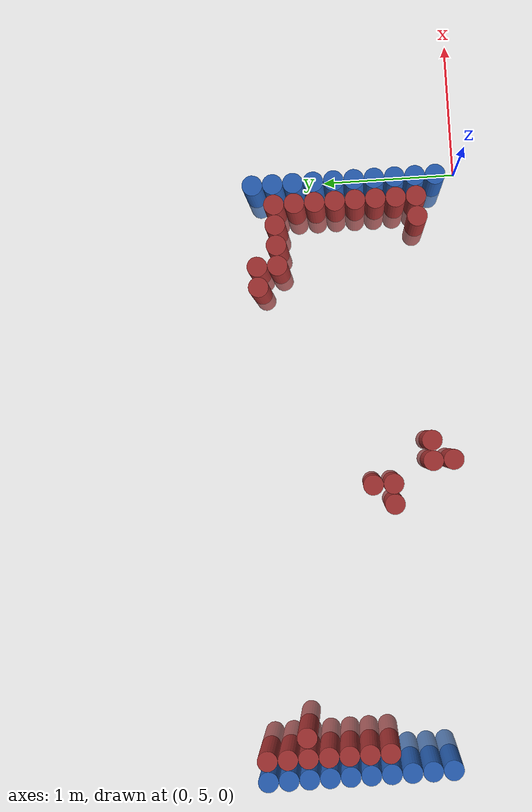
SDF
<sdf version="1.6">
 <world name="default">
  <model name="ground_plane">
   <static>1</static>
   <link name="link">
    <collision name="collision">
     <geometry><plane><normal>0 0 1</normal><size>100 100</size></plane></geometry>
     <surface><friction><ode><mu>100</mu><mu2>50</mu2></ode></friction></surface>
    </collision>
    <visual name="visual">
     <cast_shadows>0</cast_shadows>
     <geometry><plane><normal>0 0 1</normal><size>100 100</size></plane></geometry>
     <material>
      <script><uri>file://media/materials/scripts/gazebo.material</uri><name>Gazebo/Grey</name></script>
     </material>
    </visual>
   </link>
  </model>
  <model name="unit_cylinder_97">
   <static>1</static>
   <pose>-4.425000 5.325000 0.000000 0.000000 0.000000 0.000000</pose>
   <link name="link">
    <inertial>
     <mass>1</mass>
     <inertia><ixx>0.145833</ixx><ixy>0</ixy><ixz>0</ixz><iyy>0.145833</iyy><iyz>0</iyz><izz>0.125</izz></inertia>
    </inertial>
    <collision name="collision">
     <geometry><cylinder><radius>0.075000</radius><length>1</length></cylinder></geometry>
    </collision>
    <visual name="visual">
     <geometry><cylinder><radius>0.075000</radius><length>1</length></cylinder></geometry>
     <material>
      <ambient>0.152000 0.379000 0.720000 1</ambient>
      <diffuse>0.152000 0.379000 0.720000 1</diffuse>
     </material>
     <material>
      <script><name>Gazebo/Grey</name><uri>file://media/materials/scripts/gazebo.material</uri></script>
     </material>
    </visual>
   </link>
  </model>
  <model name="unit_cylinder_98">
   <static>1</static>
   <pose>-4.425000 5.475000 0.000000 0.000000 0.000000 0.000000</pose>
   <link name="link">
    <inertial>
     <mass>1</mass>
     <inertia><ixx>0.145833</ixx><ixy>0</ixy><ixz>0</ixz><iyy>0.145833</iyy><iyz>0</iyz><izz>0.125</izz></inertia>
    </inertial>
    <collision name="collision">
     <geometry><cylinder><radius>0.075000</radius><length>1</length></cylinder></geometry>
    </collision>
    <visual name="visual">
     <geometry><cylinder><radius>0.075000</radius><length>1</length></cylinder></geometry>
     <material>
      <ambient>0.152000 0.379000 0.720000 1</ambient>
      <diffuse>0.152000 0.379000 0.720000 1</diffuse>
     </material>
     <material>
      <script><name>Gazebo/Grey</name><uri>file://media/materials/scripts/gazebo.material</uri></script>
     </material>
    </visual>
   </link>
  </model>
  <model name="unit_cylinder_99">
   <static>1</static>
   <pose>-4.425000 5.625000 0.000000 0.000000 0.000000 0.000000</pose>
   <link name="link">
    <inertial>
     <mass>1</mass>
     <inertia><ixx>0.145833</ixx><ixy>0</ixy><ixz>0</ixz><iyy>0.145833</iyy><iyz>0</iyz><izz>0.125</izz></inertia>
    </inertial>
    <collision name="collision">
     <geometry><cylinder><radius>0.075000</radius><length>1</length></cylinder></geometry>
    </collision>
    <visual name="visual">
     <geometry><cylinder><radius>0.075000</radius><length>1</length></cylinder></geometry>
     <material>
      <ambient>0.152000 0.379000 0.720000 1</ambient>
      <diffuse>0.152000 0.379000 0.720000 1</diffuse>
     </material>
     <material>
      <script><name>Gazebo/Grey</name><uri>file://media/materials/scripts/gazebo.material</uri></script>
     </material>
    </visual>
   </link>
  </model>
  <model name="unit_cylinder_100">
   <static>1</static>
   <pose>-4.425000 5.775000 0.000000 0.000000 0.000000 0.000000</pose>
   <link name="link">
    <inertial>
     <mass>1</mass>
     <inertia><ixx>0.145833</ixx><ixy>0</ixy><ixz>0</ixz><iyy>0.145833</iyy><iyz>0</iyz><izz>0.125</izz></inertia>
    </inertial>
    <collision name="collision">
     <geometry><cylinder><radius>0.075000</radius><length>1</length></cylinder></geometry>
    </collision>
    <visual name="visual">
     <geometry><cylinder><radius>0.075000</radius><length>1</length></cylinder></geometry>
     <material>
      <ambient>0.152000 0.379000 0.720000 1</ambient>
      <diffuse>0.152000 0.379000 0.720000 1</diffuse>
     </material>
     <material>
      <script><name>Gazebo/Grey</name><uri>file://media/materials/scripts/gazebo.material</uri></script>
     </material>
    </visual>
   </link>
  </model>
  <model name="unit_cylinder_101">
   <static>1</static>
   <pose>-4.425000 5.925000 0.000000 0.000000 0.000000 0.000000</pose>
   <link name="link">
    <inertial>
     <mass>1</mass>
     <inertia><ixx>0.145833</ixx><ixy>0</ixy><ixz>0</ixz><iyy>0.145833</iyy><iyz>0</iyz><izz>0.125</izz></inertia>
    </inertial>
    <collision name="collision">
     <geometry><cylinder><radius>0.075000</radius><length>1</length></cylinder></geometry>
    </collision>
    <visual name="visual">
     <geometry><cylinder><radius>0.075000</radius><length>1</length></cylinder></geometry>
     <material>
      <ambient>0.152000 0.379000 0.720000 1</ambient>
      <diffuse>0.152000 0.379000 0.720000 1</diffuse>
     </material>
     <material>
      <script><name>Gazebo/Grey</name><uri>file://media/materials/scripts/gazebo.material</uri></script>
     </material>
    </visual>
   </link>
  </model>
  <model name="unit_cylinder_102">
   <static>1</static>
   <pose>-4.425000 6.075000 0.000000 0.000000 0.000000 0.000000</pose>
   <link name="link">
    <inertial>
     <mass>1</mass>
     <inertia><ixx>0.145833</ixx><ixy>0</ixy><ixz>0</ixz><iyy>0.145833</iyy><iyz>0</iyz><izz>0.125</izz></inertia>
    </inertial>
    <collision name="collision">
     <geometry><cylinder><radius>0.075000</radius><length>1</length></cylinder></geometry>
    </collision>
    <visual name="visual">
     <geometry><cylinder><radius>0.075000</radius><length>1</length></cylinder></geometry>
     <material>
      <ambient>0.152000 0.379000 0.720000 1</ambient>
      <diffuse>0.152000 0.379000 0.720000 1</diffuse>
     </material>
     <material>
      <script><name>Gazebo/Grey</name><uri>file://media/materials/scripts/gazebo.material</uri></script>
     </material>
    </visual>
   </link>
  </model>
  <model name="unit_cylinder_103">
   <static>1</static>
   <pose>-4.425000 6.225000 0.000000 0.000000 0.000000 0.000000</pose>
   <link name="link">
    <inertial>
     <mass>1</mass>
     <inertia><ixx>0.145833</ixx><ixy>0</ixy><ixz>0</ixz><iyy>0.145833</iyy><iyz>0</iyz><izz>0.125</izz></inertia>
    </inertial>
    <collision name="collision">
     <geometry><cylinder><radius>0.075000</radius><length>1</length></cylinder></geometry>
    </collision>
    <visual name="visual">
     <geometry><cylinder><radius>0.075000</radius><length>1</length></cylinder></geometry>
     <material>
      <ambient>0.152000 0.379000 0.720000 1</ambient>
      <diffuse>0.152000 0.379000 0.720000 1</diffuse>
     </material>
     <material>
      <script><name>Gazebo/Grey</name><uri>file://media/materials/scripts/gazebo.material</uri></script>
     </material>
    </visual>
   </link>
  </model>
  <model name="unit_cylinder_104">
   <static>1</static>
   <pose>-4.425000 6.375000 0.000000 0.000000 0.000000 0.000000</pose>
   <link name="link">
    <inertial>
     <mass>1</mass>
     <inertia><ixx>0.145833</ixx><ixy>0</ixy><ixz>0</ixz><iyy>0.145833</iyy><iyz>0</iyz><izz>0.125</izz></inertia>
    </inertial>
    <collision name="collision">
     <geometry><cylinder><radius>0.075000</radius><length>1</length></cylinder></geometry>
    </collision>
    <visual name="visual">
     <geometry><cylinder><radius>0.075000</radius><length>1</length></cylinder></geometry>
     <material>
      <ambient>0.152000 0.379000 0.720000 1</ambient>
      <diffuse>0.152000 0.379000 0.720000 1</diffuse>
     </material>
     <material>
      <script><name>Gazebo/Grey</name><uri>file://media/materials/scripts/gazebo.material</uri></script>
     </material>
    </visual>
   </link>
  </model>
  <model name="unit_cylinder_105">
   <static>1</static>
   <pose>-4.425000 6.525000 0.000000 0.000000 0.000000 0.000000</pose>
   <link name="link">
    <inertial>
     <mass>1</mass>
     <inertia><ixx>0.145833</ixx><ixy>0</ixy><ixz>0</ixz><iyy>0.145833</iyy><iyz>0</iyz><izz>0.125</izz></inertia>
    </inertial>
    <collision name="collision">
     <geometry><cylinder><radius>0.075000</radius><length>1</length></cylinder></geometry>
    </collision>
    <visual name="visual">
     <geometry><cylinder><radius>0.075000</radius><length>1</length></cylinder></geometry>
     <material>
      <ambient>0.152000 0.379000 0.720000 1</ambient>
      <diffuse>0.152000 0.379000 0.720000 1</diffuse>
     </material>
     <material>
      <script><name>Gazebo/Grey</name><uri>file://media/materials/scripts/gazebo.material</uri></script>
     </material>
    </visual>
   </link>
  </model>
  <model name="unit_cylinder_106">
   <static>1</static>
   <pose>-4.425000 6.675000 0.000000 0.000000 0.000000 0.000000</pose>
   <link name="link">
    <inertial>
     <mass>1</mass>
     <inertia><ixx>0.145833</ixx><ixy>0</ixy><ixz>0</ixz><iyy>0.145833</iyy><iyz>0</iyz><izz>0.125</izz></inertia>
    </inertial>
    <collision name="collision">
     <geometry><cylinder><radius>0.075000</radius><length>1</length></cylinder></geometry>
    </collision>
    <visual name="visual">
     <geometry><cylinder><radius>0.075000</radius><length>1</length></cylinder></geometry>
     <material>
      <ambient>0.152000 0.379000 0.720000 1</ambient>
      <diffuse>0.152000 0.379000 0.720000 1</diffuse>
     </material>
     <material>
      <script><name>Gazebo/Grey</name><uri>file://media/materials/scripts/gazebo.material</uri></script>
     </material>
    </visual>
   </link>
  </model>
  <model name="unit_cylinder_126">
   <static>1</static>
   <pose>-4.275000 5.775000 0.000000 0.000000 0.000000 0.000000</pose>
   <link name="link">
    <inertial>
     <mass>1</mass>
     <inertia><ixx>0.145833</ixx><ixy>0</ixy><ixz>0</ixz><iyy>0.145833</iyy><iyz>0</iyz><izz>0.125</izz></inertia>
    </inertial>
    <collision name="collision">
     <geometry><cylinder><radius>0.075000</radius><length>1</length></cylinder></geometry>
    </collision>
    <visual name="visual">
     <geometry><cylinder><radius>0.075000</radius><length>1</length></cylinder></geometry>
     <material>
      <ambient>0.648000 0.192000 0.192000 1</ambient>
      <diffuse>0.648000 0.192000 0.192000 1</diffuse>
     </material>
     <material>
      <script><name>Gazebo/Grey</name><uri>file://media/materials/scripts/gazebo.material</uri></script>
     </material>
    </visual>
   </link>
  </model>
  <model name="unit_cylinder_127">
   <static>1</static>
   <pose>-4.275000 5.925000 0.000000 0.000000 0.000000 0.000000</pose>
   <link name="link">
    <inertial>
     <mass>1</mass>
     <inertia><ixx>0.145833</ixx><ixy>0</ixy><ixz>0</ixz><iyy>0.145833</iyy><iyz>0</iyz><izz>0.125</izz></inertia>
    </inertial>
    <collision name="collision">
     <geometry><cylinder><radius>0.075000</radius><length>1</length></cylinder></geometry>
    </collision>
    <visual name="visual">
     <geometry><cylinder><radius>0.075000</radius><length>1</length></cylinder></geometry>
     <material>
      <ambient>0.648000 0.192000 0.192000 1</ambient>
      <diffuse>0.648000 0.192000 0.192000 1</diffuse>
     </material>
     <material>
      <script><name>Gazebo/Grey</name><uri>file://media/materials/scripts/gazebo.material</uri></script>
     </material>
    </visual>
   </link>
  </model>
  <model name="unit_cylinder_128">
   <static>1</static>
   <pose>-4.275000 6.075000 0.000000 0.000000 0.000000 0.000000</pose>
   <link name="link">
    <inertial>
     <mass>1</mass>
     <inertia><ixx>0.145833</ixx><ixy>0</ixy><ixz>0</ixz><iyy>0.145833</iyy><iyz>0</iyz><izz>0.125</izz></inertia>
    </inertial>
    <collision name="collision">
     <geometry><cylinder><radius>0.075000</radius><length>1</length></cylinder></geometry>
    </collision>
    <visual name="visual">
     <geometry><cylinder><radius>0.075000</radius><length>1</length></cylinder></geometry>
     <material>
      <ambient>0.648000 0.192000 0.192000 1</ambient>
      <diffuse>0.648000 0.192000 0.192000 1</diffuse>
     </material>
     <material>
      <script><name>Gazebo/Grey</name><uri>file://media/materials/scripts/gazebo.material</uri></script>
     </material>
    </visual>
   </link>
  </model>
  <model name="unit_cylinder_129">
   <static>1</static>
   <pose>-4.275000 6.225000 0.000000 0.000000 0.000000 0.000000</pose>
   <link name="link">
    <inertial>
     <mass>1</mass>
     <inertia><ixx>0.145833</ixx><ixy>0</ixy><ixz>0</ixz><iyy>0.145833</iyy><iyz>0</iyz><izz>0.125</izz></inertia>
    </inertial>
    <collision name="collision">
     <geometry><cylinder><radius>0.075000</radius><length>1</length></cylinder></geometry>
    </collision>
    <visual name="visual">
     <geometry><cylinder><radius>0.075000</radius><length>1</length></cylinder></geometry>
     <material>
      <ambient>0.648000 0.192000 0.192000 1</ambient>
      <diffuse>0.648000 0.192000 0.192000 1</diffuse>
     </material>
     <material>
      <script><name>Gazebo/Grey</name><uri>file://media/materials/scripts/gazebo.material</uri></script>
     </material>
    </visual>
   </link>
  </model>
  <model name="unit_cylinder_130">
   <static>1</static>
   <pose>-4.275000 6.375000 0.000000 0.000000 0.000000 0.000000</pose>
   <link name="link">
    <inertial>
     <mass>1</mass>
     <inertia><ixx>0.145833</ixx><ixy>0</ixy><ixz>0</ixz><iyy>0.145833</iyy><iyz>0</iyz><izz>0.125</izz></inertia>
    </inertial>
    <collision name="collision">
     <geometry><cylinder><radius>0.075000</radius><length>1</length></cylinder></geometry>
    </collision>
    <visual name="visual">
     <geometry><cylinder><radius>0.075000</radius><length>1</length></cylinder></geometry>
     <material>
      <ambient>0.648000 0.192000 0.192000 1</ambient>
      <diffuse>0.648000 0.192000 0.192000 1</diffuse>
     </material>
     <material>
      <script><name>Gazebo/Grey</name><uri>file://media/materials/scripts/gazebo.material</uri></script>
     </material>
    </visual>
   </link>
  </model>
  <model name="unit_cylinder_131">
   <static>1</static>
   <pose>-4.275000 6.525000 0.000000 0.000000 0.000000 0.000000</pose>
   <link name="link">
    <inertial>
     <mass>1</mass>
     <inertia><ixx>0.145833</ixx><ixy>0</ixy><ixz>0</ixz><iyy>0.145833</iyy><iyz>0</iyz><izz>0.125</izz></inertia>
    </inertial>
    <collision name="collision">
     <geometry><cylinder><radius>0.075000</radius><length>1</length></cylinder></geometry>
    </collision>
    <visual name="visual">
     <geometry><cylinder><radius>0.075000</radius><length>1</length></cylinder></geometry>
     <material>
      <ambient>0.648000 0.192000 0.192000 1</ambient>
      <diffuse>0.648000 0.192000 0.192000 1</diffuse>
     </material>
     <material>
      <script><name>Gazebo/Grey</name><uri>file://media/materials/scripts/gazebo.material</uri></script>
     </material>
    </visual>
   </link>
  </model>
  <model name="unit_cylinder_132">
   <static>1</static>
   <pose>-4.275000 6.675000 0.000000 0.000000 0.000000 0.000000</pose>
   <link name="link">
    <inertial>
     <mass>1</mass>
     <inertia><ixx>0.145833</ixx><ixy>0</ixy><ixz>0</ixz><iyy>0.145833</iyy><iyz>0</iyz><izz>0.125</izz></inertia>
    </inertial>
    <collision name="collision">
     <geometry><cylinder><radius>0.075000</radius><length>1</length></cylinder></geometry>
    </collision>
    <visual name="visual">
     <geometry><cylinder><radius>0.075000</radius><length>1</length></cylinder></geometry>
     <material>
      <ambient>0.648000 0.192000 0.192000 1</ambient>
      <diffuse>0.648000 0.192000 0.192000 1</diffuse>
     </material>
     <material>
      <script><name>Gazebo/Grey</name><uri>file://media/materials/scripts/gazebo.material</uri></script>
     </material>
    </visual>
   </link>
  </model>
  <model name="unit_cylinder_145">
   <static>1</static>
   <pose>-4.125000 6.375000 0.000000 0.000000 0.000000 0.000000</pose>
   <link name="link">
    <inertial>
     <mass>1</mass>
     <inertia><ixx>0.145833</ixx><ixy>0</ixy><ixz>0</ixz><iyy>0.145833</iyy><iyz>0</iyz><izz>0.125</izz></inertia>
    </inertial>
    <collision name="collision">
     <geometry><cylinder><radius>0.075000</radius><length>1</length></cylinder></geometry>
    </collision>
    <visual name="visual">
     <geometry><cylinder><radius>0.075000</radius><length>1</length></cylinder></geometry>
     <material>
      <ambient>0.648000 0.192000 0.192000 1</ambient>
      <diffuse>0.648000 0.192000 0.192000 1</diffuse>
     </material>
     <material>
      <script><name>Gazebo/Grey</name><uri>file://media/materials/scripts/gazebo.material</uri></script>
     </material>
    </visual>
   </link>
  </model>
  <model name="unit_cylinder_163">
   <static>1</static>
   <pose>-2.475000 5.625000 0.000000 0.000000 0.000000 0.000000</pose>
   <link name="link">
    <inertial>
     <mass>1</mass>
     <inertia><ixx>0.145833</ixx><ixy>0</ixy><ixz>0</ixz><iyy>0.145833</iyy><iyz>0</iyz><izz>0.125</izz></inertia>
    </inertial>
    <collision name="collision">
     <geometry><cylinder><radius>0.075000</radius><length>1</length></cylinder></geometry>
    </collision>
    <visual name="visual">
     <geometry><cylinder><radius>0.075000</radius><length>1</length></cylinder></geometry>
     <material>
      <ambient>0.648000 0.192000 0.192000 1</ambient>
      <diffuse>0.648000 0.192000 0.192000 1</diffuse>
     </material>
     <material>
      <script><name>Gazebo/Grey</name><uri>file://media/materials/scripts/gazebo.material</uri></script>
     </material>
    </visual>
   </link>
  </model>
  <model name="unit_cylinder_167">
   <static>1</static>
   <pose>-2.325000 5.625000 0.000000 0.000000 0.000000 0.000000</pose>
   <link name="link">
    <inertial>
     <mass>1</mass>
     <inertia><ixx>0.145833</ixx><ixy>0</ixy><ixz>0</ixz><iyy>0.145833</iyy><iyz>0</iyz><izz>0.125</izz></inertia>
    </inertial>
    <collision name="collision">
     <geometry><cylinder><radius>0.075000</radius><length>1</length></cylinder></geometry>
    </collision>
    <visual name="visual">
     <geometry><cylinder><radius>0.075000</radius><length>1</length></cylinder></geometry>
     <material>
      <ambient>0.648000 0.192000 0.192000 1</ambient>
      <diffuse>0.648000 0.192000 0.192000 1</diffuse>
     </material>
     <material>
      <script><name>Gazebo/Grey</name><uri>file://media/materials/scripts/gazebo.material</uri></script>
     </material>
    </visual>
   </link>
  </model>
  <model name="unit_cylinder_168">
   <static>1</static>
   <pose>-2.325000 5.775000 0.000000 0.000000 0.000000 0.000000</pose>
   <link name="link">
    <inertial>
     <mass>1</mass>
     <inertia><ixx>0.145833</ixx><ixy>0</ixy><ixz>0</ixz><iyy>0.145833</iyy><iyz>0</iyz><izz>0.125</izz></inertia>
    </inertial>
    <collision name="collision">
     <geometry><cylinder><radius>0.075000</radius><length>1</length></cylinder></geometry>
    </collision>
    <visual name="visual">
     <geometry><cylinder><radius>0.075000</radius><length>1</length></cylinder></geometry>
     <material>
      <ambient>0.648000 0.192000 0.192000 1</ambient>
      <diffuse>0.648000 0.192000 0.192000 1</diffuse>
     </material>
     <material>
      <script><name>Gazebo/Grey</name><uri>file://media/materials/scripts/gazebo.material</uri></script>
     </material>
    </visual>
   </link>
  </model>
  <model name="unit_cylinder_174">
   <static>1</static>
   <pose>-2.175000 5.175000 0.000000 0.000000 0.000000 0.000000</pose>
   <link name="link">
    <inertial>
     <mass>1</mass>
     <inertia><ixx>0.145833</ixx><ixy>0</ixy><ixz>0</ixz><iyy>0.145833</iyy><iyz>0</iyz><izz>0.125</izz></inertia>
    </inertial>
    <collision name="collision">
     <geometry><cylinder><radius>0.075000</radius><length>1</length></cylinder></geometry>
    </collision>
    <visual name="visual">
     <geometry><cylinder><radius>0.075000</radius><length>1</length></cylinder></geometry>
     <material>
      <ambient>0.648000 0.192000 0.192000 1</ambient>
      <diffuse>0.648000 0.192000 0.192000 1</diffuse>
     </material>
     <material>
      <script><name>Gazebo/Grey</name><uri>file://media/materials/scripts/gazebo.material</uri></script>
     </material>
    </visual>
   </link>
  </model>
  <model name="unit_cylinder_175">
   <static>1</static>
   <pose>-2.175000 5.325000 0.000000 0.000000 0.000000 0.000000</pose>
   <link name="link">
    <inertial>
     <mass>1</mass>
     <inertia><ixx>0.145833</ixx><ixy>0</ixy><ixz>0</ixz><iyy>0.145833</iyy><iyz>0</iyz><izz>0.125</izz></inertia>
    </inertial>
    <collision name="collision">
     <geometry><cylinder><radius>0.075000</radius><length>1</length></cylinder></geometry>
    </collision>
    <visual name="visual">
     <geometry><cylinder><radius>0.075000</radius><length>1</length></cylinder></geometry>
     <material>
      <ambient>0.648000 0.192000 0.192000 1</ambient>
      <diffuse>0.648000 0.192000 0.192000 1</diffuse>
     </material>
     <material>
      <script><name>Gazebo/Grey</name><uri>file://media/materials/scripts/gazebo.material</uri></script>
     </material>
    </visual>
   </link>
  </model>
  <model name="unit_cylinder_184">
   <static>1</static>
   <pose>-2.025000 5.325000 0.000000 0.000000 0.000000 0.000000</pose>
   <link name="link">
    <inertial>
     <mass>1</mass>
     <inertia><ixx>0.145833</ixx><ixy>0</ixy><ixz>0</ixz><iyy>0.145833</iyy><iyz>0</iyz><izz>0.125</izz></inertia>
    </inertial>
    <collision name="collision">
     <geometry><cylinder><radius>0.075000</radius><length>1</length></cylinder></geometry>
    </collision>
    <visual name="visual">
     <geometry><cylinder><radius>0.075000</radius><length>1</length></cylinder></geometry>
     <material>
      <ambient>0.648000 0.192000 0.192000 1</ambient>
      <diffuse>0.648000 0.192000 0.192000 1</diffuse>
     </material>
     <material>
      <script><name>Gazebo/Grey</name><uri>file://media/materials/scripts/gazebo.material</uri></script>
     </material>
    </visual>
   </link>
  </model>
  <model name="unit_cylinder_211">
   <static>1</static>
   <pose>-0.825000 6.525000 0.000000 0.000000 0.000000 0.000000</pose>
   <link name="link">
    <inertial>
     <mass>1</mass>
     <inertia><ixx>0.145833</ixx><ixy>0</ixy><ixz>0</ixz><iyy>0.145833</iyy><iyz>0</iyz><izz>0.125</izz></inertia>
    </inertial>
    <collision name="collision">
     <geometry><cylinder><radius>0.075000</radius><length>1</length></cylinder></geometry>
    </collision>
    <visual name="visual">
     <geometry><cylinder><radius>0.075000</radius><length>1</length></cylinder></geometry>
     <material>
      <ambient>0.648000 0.192000 0.192000 1</ambient>
      <diffuse>0.648000 0.192000 0.192000 1</diffuse>
     </material>
     <material>
      <script><name>Gazebo/Grey</name><uri>file://media/materials/scripts/gazebo.material</uri></script>
     </material>
    </visual>
   </link>
  </model>
  <model name="unit_cylinder_214">
   <static>1</static>
   <pose>-0.675000 6.375000 0.000000 0.000000 0.000000 0.000000</pose>
   <link name="link">
    <inertial>
     <mass>1</mass>
     <inertia><ixx>0.145833</ixx><ixy>0</ixy><ixz>0</ixz><iyy>0.145833</iyy><iyz>0</iyz><izz>0.125</izz></inertia>
    </inertial>
    <collision name="collision">
     <geometry><cylinder><radius>0.075000</radius><length>1</length></cylinder></geometry>
    </collision>
    <visual name="visual">
     <geometry><cylinder><radius>0.075000</radius><length>1</length></cylinder></geometry>
     <material>
      <ambient>0.648000 0.192000 0.192000 1</ambient>
      <diffuse>0.648000 0.192000 0.192000 1</diffuse>
     </material>
     <material>
      <script><name>Gazebo/Grey</name><uri>file://media/materials/scripts/gazebo.material</uri></script>
     </material>
    </visual>
   </link>
  </model>
  <model name="unit_cylinder_215">
   <static>1</static>
   <pose>-0.675000 6.525000 0.000000 0.000000 0.000000 0.000000</pose>
   <link name="link">
    <inertial>
     <mass>1</mass>
     <inertia><ixx>0.145833</ixx><ixy>0</ixy><ixz>0</ixz><iyy>0.145833</iyy><iyz>0</iyz><izz>0.125</izz></inertia>
    </inertial>
    <collision name="collision">
     <geometry><cylinder><radius>0.075000</radius><length>1</length></cylinder></geometry>
    </collision>
    <visual name="visual">
     <geometry><cylinder><radius>0.075000</radius><length>1</length></cylinder></geometry>
     <material>
      <ambient>0.648000 0.192000 0.192000 1</ambient>
      <diffuse>0.648000 0.192000 0.192000 1</diffuse>
     </material>
     <material>
      <script><name>Gazebo/Grey</name><uri>file://media/materials/scripts/gazebo.material</uri></script>
     </material>
    </visual>
   </link>
  </model>
  <model name="unit_cylinder_224">
   <static>1</static>
   <pose>-0.525000 6.375000 0.000000 0.000000 0.000000 0.000000</pose>
   <link name="link">
    <inertial>
     <mass>1</mass>
     <inertia><ixx>0.145833</ixx><ixy>0</ixy><ixz>0</ixz><iyy>0.145833</iyy><iyz>0</iyz><izz>0.125</izz></inertia>
    </inertial>
    <collision name="collision">
     <geometry><cylinder><radius>0.075000</radius><length>1</length></cylinder></geometry>
    </collision>
    <visual name="visual">
     <geometry><cylinder><radius>0.075000</radius><length>1</length></cylinder></geometry>
     <material>
      <ambient>0.648000 0.192000 0.192000 1</ambient>
      <diffuse>0.648000 0.192000 0.192000 1</diffuse>
     </material>
     <material>
      <script><name>Gazebo/Grey</name><uri>file://media/materials/scripts/gazebo.material</uri></script>
     </material>
    </visual>
   </link>
  </model>
  <model name="unit_cylinder_234">
   <static>1</static>
   <pose>-0.375000 5.325000 0.000000 0.000000 0.000000 0.000000</pose>
   <link name="link">
    <inertial>
     <mass>1</mass>
     <inertia><ixx>0.145833</ixx><ixy>0</ixy><ixz>0</ixz><iyy>0.145833</iyy><iyz>0</iyz><izz>0.125</izz></inertia>
    </inertial>
    <collision name="collision">
     <geometry><cylinder><radius>0.075000</radius><length>1</length></cylinder></geometry>
    </collision>
    <visual name="visual">
     <geometry><cylinder><radius>0.075000</radius><length>1</length></cylinder></geometry>
     <material>
      <ambient>0.648000 0.192000 0.192000 1</ambient>
      <diffuse>0.648000 0.192000 0.192000 1</diffuse>
     </material>
     <material>
      <script><name>Gazebo/Grey</name><uri>file://media/materials/scripts/gazebo.material</uri></script>
     </material>
    </visual>
   </link>
  </model>
  <model name="unit_cylinder_235">
   <static>1</static>
   <pose>-0.375000 6.375000 0.000000 0.000000 0.000000 0.000000</pose>
   <link name="link">
    <inertial>
     <mass>1</mass>
     <inertia><ixx>0.145833</ixx><ixy>0</ixy><ixz>0</ixz><iyy>0.145833</iyy><iyz>0</iyz><izz>0.125</izz></inertia>
    </inertial>
    <collision name="collision">
     <geometry><cylinder><radius>0.075000</radius><length>1</length></cylinder></geometry>
    </collision>
    <visual name="visual">
     <geometry><cylinder><radius>0.075000</radius><length>1</length></cylinder></geometry>
     <material>
      <ambient>0.648000 0.192000 0.192000 1</ambient>
      <diffuse>0.648000 0.192000 0.192000 1</diffuse>
     </material>
     <material>
      <script><name>Gazebo/Grey</name><uri>file://media/materials/scripts/gazebo.material</uri></script>
     </material>
    </visual>
   </link>
  </model>
  <model name="unit_cylinder_240">
   <static>1</static>
   <pose>-0.225000 5.325000 0.000000 0.000000 0.000000 0.000000</pose>
   <link name="link">
    <inertial>
     <mass>1</mass>
     <inertia><ixx>0.145833</ixx><ixy>0</ixy><ixz>0</ixz><iyy>0.145833</iyy><iyz>0</iyz><izz>0.125</izz></inertia>
    </inertial>
    <collision name="collision">
     <geometry><cylinder><radius>0.075000</radius><length>1</length></cylinder></geometry>
    </collision>
    <visual name="visual">
     <geometry><cylinder><radius>0.075000</radius><length>1</length></cylinder></geometry>
     <material>
      <ambient>0.648000 0.192000 0.192000 1</ambient>
      <diffuse>0.648000 0.192000 0.192000 1</diffuse>
     </material>
     <material>
      <script><name>Gazebo/Grey</name><uri>file://media/materials/scripts/gazebo.material</uri></script>
     </material>
    </visual>
   </link>
  </model>
  <model name="unit_cylinder_241">
   <static>1</static>
   <pose>-0.225000 5.475000 0.000000 0.000000 0.000000 0.000000</pose>
   <link name="link">
    <inertial>
     <mass>1</mass>
     <inertia><ixx>0.145833</ixx><ixy>0</ixy><ixz>0</ixz><iyy>0.145833</iyy><iyz>0</iyz><izz>0.125</izz></inertia>
    </inertial>
    <collision name="collision">
     <geometry><cylinder><radius>0.075000</radius><length>1</length></cylinder></geometry>
    </collision>
    <visual name="visual">
     <geometry><cylinder><radius>0.075000</radius><length>1</length></cylinder></geometry>
     <material>
      <ambient>0.648000 0.192000 0.192000 1</ambient>
      <diffuse>0.648000 0.192000 0.192000 1</diffuse>
     </material>
     <material>
      <script><name>Gazebo/Grey</name><uri>file://media/materials/scripts/gazebo.material</uri></script>
     </material>
    </visual>
   </link>
  </model>
  <model name="unit_cylinder_242">
   <static>1</static>
   <pose>-0.225000 5.625000 0.000000 0.000000 0.000000 0.000000</pose>
   <link name="link">
    <inertial>
     <mass>1</mass>
     <inertia><ixx>0.145833</ixx><ixy>0</ixy><ixz>0</ixz><iyy>0.145833</iyy><iyz>0</iyz><izz>0.125</izz></inertia>
    </inertial>
    <collision name="collision">
     <geometry><cylinder><radius>0.075000</radius><length>1</length></cylinder></geometry>
    </collision>
    <visual name="visual">
     <geometry><cylinder><radius>0.075000</radius><length>1</length></cylinder></geometry>
     <material>
      <ambient>0.648000 0.192000 0.192000 1</ambient>
      <diffuse>0.648000 0.192000 0.192000 1</diffuse>
     </material>
     <material>
      <script><name>Gazebo/Grey</name><uri>file://media/materials/scripts/gazebo.material</uri></script>
     </material>
    </visual>
   </link>
  </model>
  <model name="unit_cylinder_243">
   <static>1</static>
   <pose>-0.225000 5.775000 0.000000 0.000000 0.000000 0.000000</pose>
   <link name="link">
    <inertial>
     <mass>1</mass>
     <inertia><ixx>0.145833</ixx><ixy>0</ixy><ixz>0</ixz><iyy>0.145833</iyy><iyz>0</iyz><izz>0.125</izz></inertia>
    </inertial>
    <collision name="collision">
     <geometry><cylinder><radius>0.075000</radius><length>1</length></cylinder></geometry>
    </collision>
    <visual name="visual">
     <geometry><cylinder><radius>0.075000</radius><length>1</length></cylinder></geometry>
     <material>
      <ambient>0.648000 0.192000 0.192000 1</ambient>
      <diffuse>0.648000 0.192000 0.192000 1</diffuse>
     </material>
     <material>
      <script><name>Gazebo/Grey</name><uri>file://media/materials/scripts/gazebo.material</uri></script>
     </material>
    </visual>
   </link>
  </model>
  <model name="unit_cylinder_244">
   <static>1</static>
   <pose>-0.225000 5.925000 0.000000 0.000000 0.000000 0.000000</pose>
   <link name="link">
    <inertial>
     <mass>1</mass>
     <inertia><ixx>0.145833</ixx><ixy>0</ixy><ixz>0</ixz><iyy>0.145833</iyy><iyz>0</iyz><izz>0.125</izz></inertia>
    </inertial>
    <collision name="collision">
     <geometry><cylinder><radius>0.075000</radius><length>1</length></cylinder></geometry>
    </collision>
    <visual name="visual">
     <geometry><cylinder><radius>0.075000</radius><length>1</length></cylinder></geometry>
     <material>
      <ambient>0.648000 0.192000 0.192000 1</ambient>
      <diffuse>0.648000 0.192000 0.192000 1</diffuse>
     </material>
     <material>
      <script><name>Gazebo/Grey</name><uri>file://media/materials/scripts/gazebo.material</uri></script>
     </material>
    </visual>
   </link>
  </model>
  <model name="unit_cylinder_245">
   <static>1</static>
   <pose>-0.225000 6.075000 0.000000 0.000000 0.000000 0.000000</pose>
   <link name="link">
    <inertial>
     <mass>1</mass>
     <inertia><ixx>0.145833</ixx><ixy>0</ixy><ixz>0</ixz><iyy>0.145833</iyy><iyz>0</iyz><izz>0.125</izz></inertia>
    </inertial>
    <collision name="collision">
     <geometry><cylinder><radius>0.075000</radius><length>1</length></cylinder></geometry>
    </collision>
    <visual name="visual">
     <geometry><cylinder><radius>0.075000</radius><length>1</length></cylinder></geometry>
     <material>
      <ambient>0.648000 0.192000 0.192000 1</ambient>
      <diffuse>0.648000 0.192000 0.192000 1</diffuse>
     </material>
     <material>
      <script><name>Gazebo/Grey</name><uri>file://media/materials/scripts/gazebo.material</uri></script>
     </material>
    </visual>
   </link>
  </model>
  <model name="unit_cylinder_246">
   <static>1</static>
   <pose>-0.225000 6.225000 0.000000 0.000000 0.000000 0.000000</pose>
   <link name="link">
    <inertial>
     <mass>1</mass>
     <inertia><ixx>0.145833</ixx><ixy>0</ixy><ixz>0</ixz><iyy>0.145833</iyy><iyz>0</iyz><izz>0.125</izz></inertia>
    </inertial>
    <collision name="collision">
     <geometry><cylinder><radius>0.075000</radius><length>1</length></cylinder></geometry>
    </collision>
    <visual name="visual">
     <geometry><cylinder><radius>0.075000</radius><length>1</length></cylinder></geometry>
     <material>
      <ambient>0.648000 0.192000 0.192000 1</ambient>
      <diffuse>0.648000 0.192000 0.192000 1</diffuse>
     </material>
     <material>
      <script><name>Gazebo/Grey</name><uri>file://media/materials/scripts/gazebo.material</uri></script>
     </material>
    </visual>
   </link>
  </model>
  <model name="unit_cylinder_247">
   <static>1</static>
   <pose>-0.225000 6.375000 0.000000 0.000000 0.000000 0.000000</pose>
   <link name="link">
    <inertial>
     <mass>1</mass>
     <inertia><ixx>0.145833</ixx><ixy>0</ixy><ixz>0</ixz><iyy>0.145833</iyy><iyz>0</iyz><izz>0.125</izz></inertia>
    </inertial>
    <collision name="collision">
     <geometry><cylinder><radius>0.075000</radius><length>1</length></cylinder></geometry>
    </collision>
    <visual name="visual">
     <geometry><cylinder><radius>0.075000</radius><length>1</length></cylinder></geometry>
     <material>
      <ambient>0.648000 0.192000 0.192000 1</ambient>
      <diffuse>0.648000 0.192000 0.192000 1</diffuse>
     </material>
     <material>
      <script><name>Gazebo/Grey</name><uri>file://media/materials/scripts/gazebo.material</uri></script>
     </material>
    </visual>
   </link>
  </model>
  <model name="unit_cylinder_259">
   <static>1</static>
   <pose>-0.075000 5.175000 0.000000 0.000000 0.000000 0.000000</pose>
   <link name="link">
    <inertial>
     <mass>1</mass>
     <inertia><ixx>0.145833</ixx><ixy>0</ixy><ixz>0</ixz><iyy>0.145833</iyy><iyz>0</iyz><izz>0.125</izz></inertia>
    </inertial>
    <collision name="collision">
     <geometry><cylinder><radius>0.075000</radius><length>1</length></cylinder></geometry>
    </collision>
    <visual name="visual">
     <geometry><cylinder><radius>0.075000</radius><length>1</length></cylinder></geometry>
     <material>
      <ambient>0.152000 0.379000 0.720000 1</ambient>
      <diffuse>0.152000 0.379000 0.720000 1</diffuse>
     </material>
     <material>
      <script><name>Gazebo/Grey</name><uri>file://media/materials/scripts/gazebo.material</uri></script>
     </material>
    </visual>
   </link>
  </model>
  <model name="unit_cylinder_260">
   <static>1</static>
   <pose>-0.075000 5.325000 0.000000 0.000000 0.000000 0.000000</pose>
   <link name="link">
    <inertial>
     <mass>1</mass>
     <inertia><ixx>0.145833</ixx><ixy>0</ixy><ixz>0</ixz><iyy>0.145833</iyy><iyz>0</iyz><izz>0.125</izz></inertia>
    </inertial>
    <collision name="collision">
     <geometry><cylinder><radius>0.075000</radius><length>1</length></cylinder></geometry>
    </collision>
    <visual name="visual">
     <geometry><cylinder><radius>0.075000</radius><length>1</length></cylinder></geometry>
     <material>
      <ambient>0.152000 0.379000 0.720000 1</ambient>
      <diffuse>0.152000 0.379000 0.720000 1</diffuse>
     </material>
     <material>
      <script><name>Gazebo/Grey</name><uri>file://media/materials/scripts/gazebo.material</uri></script>
     </material>
    </visual>
   </link>
  </model>
  <model name="unit_cylinder_261">
   <static>1</static>
   <pose>-0.075000 5.475000 0.000000 0.000000 0.000000 0.000000</pose>
   <link name="link">
    <inertial>
     <mass>1</mass>
     <inertia><ixx>0.145833</ixx><ixy>0</ixy><ixz>0</ixz><iyy>0.145833</iyy><iyz>0</iyz><izz>0.125</izz></inertia>
    </inertial>
    <collision name="collision">
     <geometry><cylinder><radius>0.075000</radius><length>1</length></cylinder></geometry>
    </collision>
    <visual name="visual">
     <geometry><cylinder><radius>0.075000</radius><length>1</length></cylinder></geometry>
     <material>
      <ambient>0.152000 0.379000 0.720000 1</ambient>
      <diffuse>0.152000 0.379000 0.720000 1</diffuse>
     </material>
     <material>
      <script><name>Gazebo/Grey</name><uri>file://media/materials/scripts/gazebo.material</uri></script>
     </material>
    </visual>
   </link>
  </model>
  <model name="unit_cylinder_262">
   <static>1</static>
   <pose>-0.075000 5.625000 0.000000 0.000000 0.000000 0.000000</pose>
   <link name="link">
    <inertial>
     <mass>1</mass>
     <inertia><ixx>0.145833</ixx><ixy>0</ixy><ixz>0</ixz><iyy>0.145833</iyy><iyz>0</iyz><izz>0.125</izz></inertia>
    </inertial>
    <collision name="collision">
     <geometry><cylinder><radius>0.075000</radius><length>1</length></cylinder></geometry>
    </collision>
    <visual name="visual">
     <geometry><cylinder><radius>0.075000</radius><length>1</length></cylinder></geometry>
     <material>
      <ambient>0.152000 0.379000 0.720000 1</ambient>
      <diffuse>0.152000 0.379000 0.720000 1</diffuse>
     </material>
     <material>
      <script><name>Gazebo/Grey</name><uri>file://media/materials/scripts/gazebo.material</uri></script>
     </material>
    </visual>
   </link>
  </model>
  <model name="unit_cylinder_263">
   <static>1</static>
   <pose>-0.075000 5.775000 0.000000 0.000000 0.000000 0.000000</pose>
   <link name="link">
    <inertial>
     <mass>1</mass>
     <inertia><ixx>0.145833</ixx><ixy>0</ixy><ixz>0</ixz><iyy>0.145833</iyy><iyz>0</iyz><izz>0.125</izz></inertia>
    </inertial>
    <collision name="collision">
     <geometry><cylinder><radius>0.075000</radius><length>1</length></cylinder></geometry>
    </collision>
    <visual name="visual">
     <geometry><cylinder><radius>0.075000</radius><length>1</length></cylinder></geometry>
     <material>
      <ambient>0.152000 0.379000 0.720000 1</ambient>
      <diffuse>0.152000 0.379000 0.720000 1</diffuse>
     </material>
     <material>
      <script><name>Gazebo/Grey</name><uri>file://media/materials/scripts/gazebo.material</uri></script>
     </material>
    </visual>
   </link>
  </model>
  <model name="unit_cylinder_264">
   <static>1</static>
   <pose>-0.075000 5.925000 0.000000 0.000000 0.000000 0.000000</pose>
   <link name="link">
    <inertial>
     <mass>1</mass>
     <inertia><ixx>0.145833</ixx><ixy>0</ixy><ixz>0</ixz><iyy>0.145833</iyy><iyz>0</iyz><izz>0.125</izz></inertia>
    </inertial>
    <collision name="collision">
     <geometry><cylinder><radius>0.075000</radius><length>1</length></cylinder></geometry>
    </collision>
    <visual name="visual">
     <geometry><cylinder><radius>0.075000</radius><length>1</length></cylinder></geometry>
     <material>
      <ambient>0.152000 0.379000 0.720000 1</ambient>
      <diffuse>0.152000 0.379000 0.720000 1</diffuse>
     </material>
     <material>
      <script><name>Gazebo/Grey</name><uri>file://media/materials/scripts/gazebo.material</uri></script>
     </material>
    </visual>
   </link>
  </model>
  <model name="unit_cylinder_265">
   <static>1</static>
   <pose>-0.075000 6.075000 0.000000 0.000000 0.000000 0.000000</pose>
   <link name="link">
    <inertial>
     <mass>1</mass>
     <inertia><ixx>0.145833</ixx><ixy>0</ixy><ixz>0</ixz><iyy>0.145833</iyy><iyz>0</iyz><izz>0.125</izz></inertia>
    </inertial>
    <collision name="collision">
     <geometry><cylinder><radius>0.075000</radius><length>1</length></cylinder></geometry>
    </collision>
    <visual name="visual">
     <geometry><cylinder><radius>0.075000</radius><length>1</length></cylinder></geometry>
     <material>
      <ambient>0.152000 0.379000 0.720000 1</ambient>
      <diffuse>0.152000 0.379000 0.720000 1</diffuse>
     </material>
     <material>
      <script><name>Gazebo/Grey</name><uri>file://media/materials/scripts/gazebo.material</uri></script>
     </material>
    </visual>
   </link>
  </model>
  <model name="unit_cylinder_266">
   <static>1</static>
   <pose>-0.075000 6.225000 0.000000 0.000000 0.000000 0.000000</pose>
   <link name="link">
    <inertial>
     <mass>1</mass>
     <inertia><ixx>0.145833</ixx><ixy>0</ixy><ixz>0</ixz><iyy>0.145833</iyy><iyz>0</iyz><izz>0.125</izz></inertia>
    </inertial>
    <collision name="collision">
     <geometry><cylinder><radius>0.075000</radius><length>1</length></cylinder></geometry>
    </collision>
    <visual name="visual">
     <geometry><cylinder><radius>0.075000</radius><length>1</length></cylinder></geometry>
     <material>
      <ambient>0.152000 0.379000 0.720000 1</ambient>
      <diffuse>0.152000 0.379000 0.720000 1</diffuse>
     </material>
     <material>
      <script><name>Gazebo/Grey</name><uri>file://media/materials/scripts/gazebo.material</uri></script>
     </material>
    </visual>
   </link>
  </model>
  <model name="unit_cylinder_267">
   <static>1</static>
   <pose>-0.075000 6.375000 0.000000 0.000000 0.000000 0.000000</pose>
   <link name="link">
    <inertial>
     <mass>1</mass>
     <inertia><ixx>0.145833</ixx><ixy>0</ixy><ixz>0</ixz><iyy>0.145833</iyy><iyz>0</iyz><izz>0.125</izz></inertia>
    </inertial>
    <collision name="collision">
     <geometry><cylinder><radius>0.075000</radius><length>1</length></cylinder></geometry>
    </collision>
    <visual name="visual">
     <geometry><cylinder><radius>0.075000</radius><length>1</length></cylinder></geometry>
     <material>
      <ambient>0.152000 0.379000 0.720000 1</ambient>
      <diffuse>0.152000 0.379000 0.720000 1</diffuse>
     </material>
     <material>
      <script><name>Gazebo/Grey</name><uri>file://media/materials/scripts/gazebo.material</uri></script>
     </material>
    </visual>
   </link>
  </model>
  <model name="unit_cylinder_268">
   <static>1</static>
   <pose>-0.075000 6.525000 0.000000 0.000000 0.000000 0.000000</pose>
   <link name="link">
    <inertial>
     <mass>1</mass>
     <inertia><ixx>0.145833</ixx><ixy>0</ixy><ixz>0</ixz><iyy>0.145833</iyy><iyz>0</iyz><izz>0.125</izz></inertia>
    </inertial>
    <collision name="collision">
     <geometry><cylinder><radius>0.075000</radius><length>1</length></cylinder></geometry>
    </collision>
    <visual name="visual">
     <geometry><cylinder><radius>0.075000</radius><length>1</length></cylinder></geometry>
     <material>
      <ambient>0.152000 0.379000 0.720000 1</ambient>
      <diffuse>0.152000 0.379000 0.720000 1</diffuse>
     </material>
     <material>
      <script><name>Gazebo/Grey</name><uri>file://media/materials/scripts/gazebo.material</uri></script>
     </material>
    </visual>
   </link>
  </model>
 </world>
</sdf>
